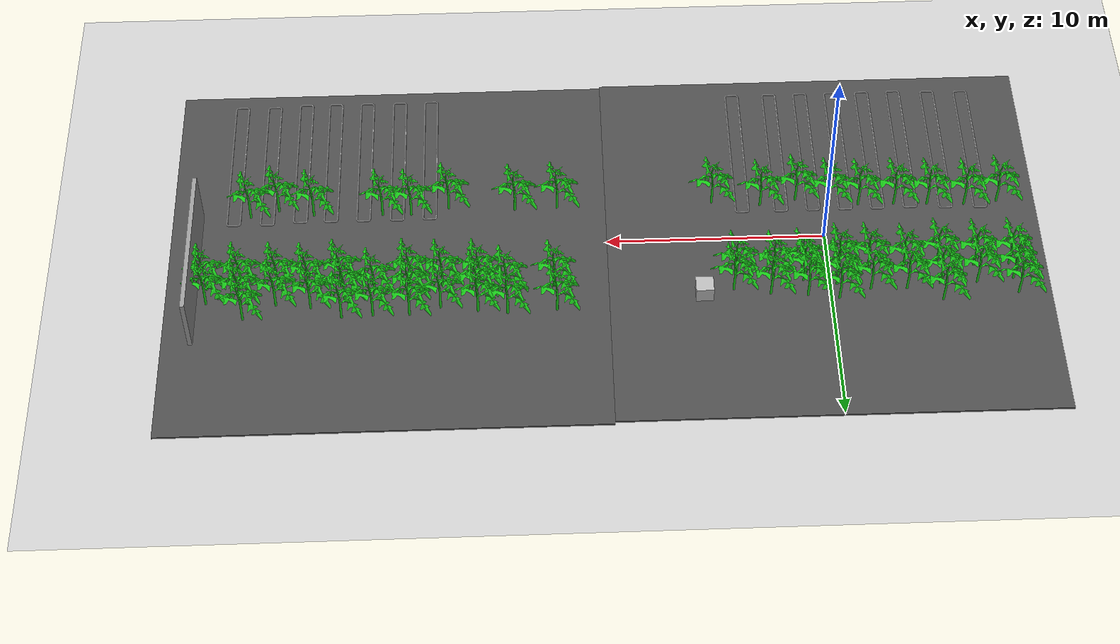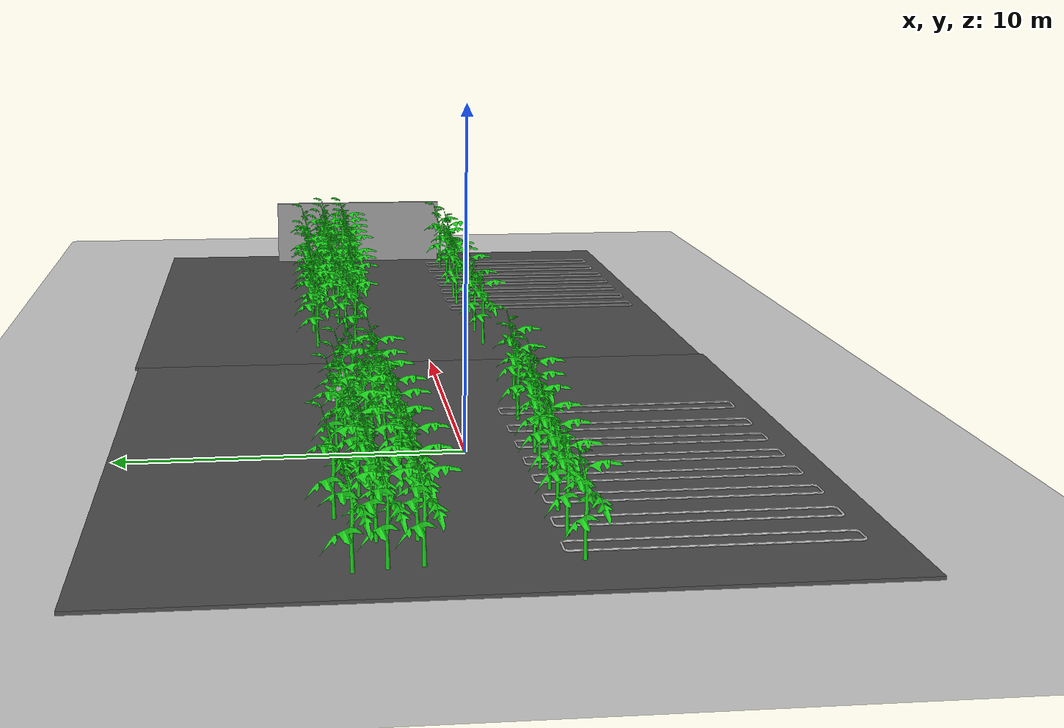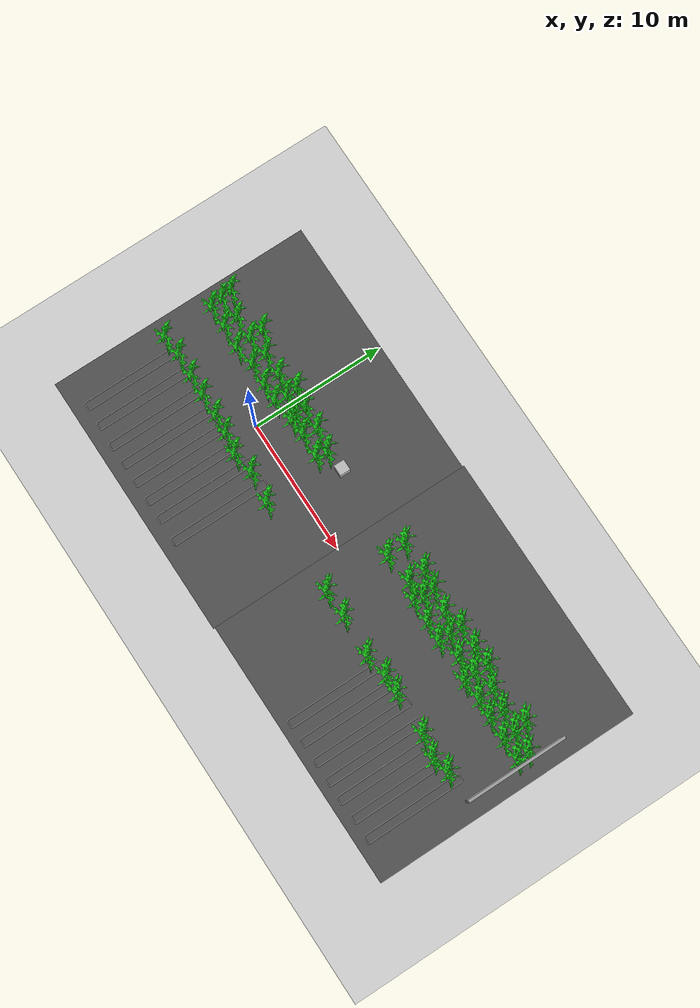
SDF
<sdf version="1.7">
 <world name="default">
  <model name="ground_plane">
   <static>1</static>
   <link name="link">
    <collision name="collision">
     <geometry><plane><normal>0 0 1</normal><size>100 100</size></plane></geometry>
     <surface><friction><ode><mu>100</mu><mu2>50</mu2></ode></friction></surface>
    </collision>
    <visual name="visual">
     <cast_shadows>0</cast_shadows>
     <geometry><plane><normal>0 0 1</normal><size>100 100</size></plane></geometry>
     <material>
      <script><uri>file://media/materials/scripts/gazebo.material</uri><name>Gazebo/Grey</name></script>
     </material>
    </visual>
   </link>
  </model>
  <model name="piperail">
   <static>1</static>
   <link name="link">
    <collision name="collision">
     <geometry>
      <mesh><scale>0.001 0.001 0.001</scale><uri>model://piperail/meshes/piperail.STL</uri></mesh>
     </geometry>
    </collision>
    <visual name="visual">
     <geometry>
      <mesh><scale>0.001 0.001 0.001</scale><uri>model://piperail/meshes/piperail.STL</uri></mesh>
     </geometry>
    </visual>
   </link>
   <pose>0 -1.5 0.05 1.57 -0 0</pose>
  </model>
  <model name="plant">
   <static>1</static>
   <link name="link">
    <visual name="visual">
     <geometry><mesh><scale>0.01 0.01 0.01</scale><uri>model://plant/meshes/plant.STL</uri></mesh></geometry>
     <material>
      <ambient>0.1 0.8 0.1 1</ambient>
      <diffuse>0.1 0.8 0.1 1</diffuse>
      <specular>0.01 0.01 0.01 1</specular>
      <emissive>0 0 0 1</emissive>
     </material>
    </visual>
   </link>
   <pose>1.77763 -1.13342 -0.001164 1.57 -0 0</pose>
  </model>
  <model name="plant_clone_1">
   <static>1</static>
   <link name="link">
    <visual name="visual">
     <geometry><mesh><scale>0.01 0.01 0.01</scale><uri>model://plant/meshes/plant.STL</uri></mesh></geometry>
     <material>
      <ambient>0.1 0.8 0.1 1</ambient>
      <diffuse>0.1 0.8 0.1 1</diffuse>
      <specular>0.01 0.01 0.01 1</specular>
      <emissive>0 0 0 1</emissive>
     </material>
    </visual>
   </link>
   <pose>1.49228 3.17394 0.000845 1.57 -0 0</pose>
  </model>
  <model name="plant_clone_2">
   <static>1</static>
   <link name="link">
    <visual name="visual">
     <geometry><mesh><scale>0.01 0.01 0.01</scale><uri>model://plant/meshes/plant.STL</uri></mesh></geometry>
     <material>
      <ambient>0.1 0.8 0.1 1</ambient>
      <diffuse>0.1 0.8 0.1 1</diffuse>
      <specular>0.01 0.01 0.01 1</specular>
      <emissive>0 0 0 1</emissive>
     </material>
    </visual>
   </link>
   <pose>1.68663 4.1733 0.001925 1.57 -0 0</pose>
  </model>
  <model name="piperail_clone_0">
   <static>1</static>
   <link name="link">
    <collision name="collision">
     <geometry>
      <mesh><scale>0.001 0.001 0.001</scale><uri>model://piperail/meshes/piperail.STL</uri></mesh>
     </geometry>
    </collision>
    <visual name="visual">
     <geometry>
      <mesh><scale>0.001 0.001 0.001</scale><uri>model://piperail/meshes/piperail.STL</uri></mesh>
     </geometry>
    </visual>
   </link>
   <pose>1.5 -1.5 0.05 1.57 -0 0</pose>
  </model>
  <model name="piperail_clone_1">
   <static>1</static>
   <link name="link">
    <collision name="collision">
     <geometry>
      <mesh><scale>0.001 0.001 0.001</scale><uri>model://piperail/meshes/piperail.STL</uri></mesh>
     </geometry>
    </collision>
    <visual name="visual">
     <geometry>
      <mesh><scale>0.001 0.001 0.001</scale><uri>model://piperail/meshes/piperail.STL</uri></mesh>
     </geometry>
    </visual>
   </link>
   <pose>3.3 -1.5 0.05 1.57 -0 0</pose>
  </model>
  <model name="piperail_clone_2">
   <static>1</static>
   <link name="link">
    <collision name="collision">
     <geometry>
      <mesh><scale>0.001 0.001 0.001</scale><uri>model://piperail/meshes/piperail.STL</uri></mesh>
     </geometry>
    </collision>
    <visual name="visual">
     <geometry>
      <mesh><scale>0.001 0.001 0.001</scale><uri>model://piperail/meshes/piperail.STL</uri></mesh>
     </geometry>
    </visual>
   </link>
   <pose>-1.5 -1.5 0.05 1.57 -0 0</pose>
  </model>
  <model name="piperail_clone_3">
   <static>1</static>
   <link name="link">
    <collision name="collision">
     <geometry>
      <mesh><scale>0.001 0.001 0.001</scale><uri>model://piperail/meshes/piperail.STL</uri></mesh>
     </geometry>
    </collision>
    <visual name="visual">
     <geometry>
      <mesh><scale>0.001 0.001 0.001</scale><uri>model://piperail/meshes/piperail.STL</uri></mesh>
     </geometry>
    </visual>
   </link>
   <pose>-3 -1.5 0.05 1.57 -0 0</pose>
  </model>
  <model name="plant_clone_1_clone">
   <static>1</static>
   <link name="link">
    <visual name="visual">
     <geometry><mesh><scale>0.01 0.01 0.01</scale><uri>model://plant/meshes/plant.STL</uri></mesh></geometry>
     <material>
      <ambient>0.1 0.8 0.1 1</ambient>
      <diffuse>0.1 0.8 0.1 1</diffuse>
      <specular>0.01 0.01 0.01 1</specular>
      <emissive>0 0 0 1</emissive>
     </material>
    </visual>
   </link>
   <pose>0.017412 4.30864 0.000845 1.57 -0 0</pose>
  </model>
  <model name="plant_clone_1_clone_0">
   <static>1</static>
   <link name="link">
    <visual name="visual">
     <geometry><mesh><scale>0.01 0.01 0.01</scale><uri>model://plant/meshes/plant.STL</uri></mesh></geometry>
     <material>
      <ambient>0.1 0.8 0.1 1</ambient>
      <diffuse>0.1 0.8 0.1 1</diffuse>
      <specular>0.01 0.01 0.01 1</specular>
      <emissive>0 0 0 1</emissive>
     </material>
    </visual>
   </link>
   <pose>0.140209 3.43982 0.000845 1.57 -0 0</pose>
  </model>
  <model name="plant_clone_1_clone_1">
   <static>1</static>
   <link name="link">
    <visual name="visual">
     <geometry><mesh><scale>0.01 0.01 0.01</scale><uri>model://plant/meshes/plant.STL</uri></mesh></geometry>
     <material>
      <ambient>0.1 0.8 0.1 1</ambient>
      <diffuse>0.1 0.8 0.1 1</diffuse>
      <specular>0.01 0.01 0.01 1</specular>
      <emissive>0 0 0 1</emissive>
     </material>
    </visual>
   </link>
   <pose>0.218511 3.06385 0.000845 1.57 -0 0</pose>
  </model>
  <model name="plant_clone_1_clone_2">
   <static>1</static>
   <link name="link">
    <visual name="visual">
     <geometry><mesh><scale>0.01 0.01 0.01</scale><uri>model://plant/meshes/plant.STL</uri></mesh></geometry>
     <material>
      <ambient>0.1 0.8 0.1 1</ambient>
      <diffuse>0.1 0.8 0.1 1</diffuse>
      <specular>0.01 0.01 0.01 1</specular>
      <emissive>0 0 0 1</emissive>
     </material>
    </visual>
   </link>
   <pose>-1.38801 4.52892 0.000845 1.57 -0 0</pose>
  </model>
  <model name="plant_clone_1_clone_3">
   <static>1</static>
   <link name="link">
    <visual name="visual">
     <geometry><mesh><scale>0.01 0.01 0.01</scale><uri>model://plant/meshes/plant.STL</uri></mesh></geometry>
     <material>
      <ambient>0.1 0.8 0.1 1</ambient>
      <diffuse>0.1 0.8 0.1 1</diffuse>
      <specular>0.01 0.01 0.01 1</specular>
      <emissive>0 0 0 1</emissive>
     </material>
    </visual>
   </link>
   <pose>-1.34584 3.71141 0.000845 1.57 -0 0</pose>
  </model>
  <model name="plant_clone_1_clone_4">
   <static>1</static>
   <link name="link">
    <visual name="visual">
     <geometry><mesh><scale>0.01 0.01 0.01</scale><uri>model://plant/meshes/plant.STL</uri></mesh></geometry>
     <material>
      <ambient>0.1 0.8 0.1 1</ambient>
      <diffuse>0.1 0.8 0.1 1</diffuse>
      <specular>0.01 0.01 0.01 1</specular>
      <emissive>0 0 0 1</emissive>
     </material>
    </visual>
   </link>
   <pose>-1.48013 2.86029 0.000845 1.57 -0 0</pose>
  </model>
  <model name="plant_clone_1_clone_6">
   <static>1</static>
   <link name="link">
    <visual name="visual">
     <geometry><mesh><scale>0.01 0.01 0.01</scale><uri>model://plant/meshes/plant.STL</uri></mesh></geometry>
     <material>
      <ambient>0.1 0.8 0.1 1</ambient>
      <diffuse>0.1 0.8 0.1 1</diffuse>
      <specular>0.01 0.01 0.01 1</specular>
      <emissive>0 0 0 1</emissive>
     </material>
    </visual>
   </link>
   <pose>-2.84798 4.0609 0.000845 1.57 -0 0</pose>
  </model>
  <model name="plant_clone_1_clone_7">
   <static>1</static>
   <link name="link">
    <visual name="visual">
     <geometry><mesh><scale>0.01 0.01 0.01</scale><uri>model://plant/meshes/plant.STL</uri></mesh></geometry>
     <material>
      <ambient>0.1 0.8 0.1 1</ambient>
      <diffuse>0.1 0.8 0.1 1</diffuse>
      <specular>0.01 0.01 0.01 1</specular>
      <emissive>0 0 0 1</emissive>
     </material>
    </visual>
   </link>
   <pose>-2.81594 2.86917 0.000845 1.57 -0 0</pose>
  </model>
  <model name="plant_clone_1_clone_9">
   <static>1</static>
   <link name="link">
    <visual name="visual">
     <geometry><mesh><scale>0.01 0.01 0.01</scale><uri>model://plant/meshes/plant.STL</uri></mesh></geometry>
     <material>
      <ambient>0.1 0.8 0.1 1</ambient>
      <diffuse>0.1 0.8 0.1 1</diffuse>
      <specular>0.01 0.01 0.01 1</specular>
      <emissive>0 0 0 1</emissive>
     </material>
    </visual>
   </link>
   <pose>0.112161 -1.39635 0.000845 1.57 -0 0</pose>
  </model>
  <model name="plant_clone_1_clone_12">
   <static>1</static>
   <link name="link">
    <visual name="visual">
     <geometry><mesh><scale>0.01 0.01 0.01</scale><uri>model://plant/meshes/plant.STL</uri></mesh></geometry>
     <material>
      <ambient>0.1 0.8 0.1 1</ambient>
      <diffuse>0.1 0.8 0.1 1</diffuse>
      <specular>0.01 0.01 0.01 1</specular>
      <emissive>0 0 0 1</emissive>
     </material>
    </visual>
   </link>
   <pose>-1.38485 -1.1272 0.000845 1.57 -0 0</pose>
  </model>
  <model name="plant_clone_1_clone_15">
   <static>1</static>
   <link name="link">
    <visual name="visual">
     <geometry><mesh><scale>0.01 0.01 0.01</scale><uri>model://plant/meshes/plant.STL</uri></mesh></geometry>
     <material>
      <ambient>0.1 0.8 0.1 1</ambient>
      <diffuse>0.1 0.8 0.1 1</diffuse>
      <specular>0.01 0.01 0.01 1</specular>
      <emissive>0 0 0 1</emissive>
     </material>
    </visual>
   </link>
   <pose>-2.79115 -1.01945 0.000845 1.57 -0 0</pose>
  </model>
  <model name="plant_clone_1_clone_22">
   <static>1</static>
   <link name="link">
    <visual name="visual">
     <geometry><mesh><scale>0.01 0.01 0.01</scale><uri>model://plant/meshes/plant.STL</uri></mesh></geometry>
     <material>
      <ambient>0.1 0.8 0.1 1</ambient>
      <diffuse>0.1 0.8 0.1 1</diffuse>
      <specular>0.01 0.01 0.01 1</specular>
      <emissive>0 0 0 1</emissive>
     </material>
    </visual>
   </link>
   <pose>3.34479 3.86027 0.000845 1.57 -0 0</pose>
  </model>
  <model name="plant_clone_1_clone_23">
   <static>1</static>
   <link name="link">
    <visual name="visual">
     <geometry><mesh><scale>0.01 0.01 0.01</scale><uri>model://plant/meshes/plant.STL</uri></mesh></geometry>
     <material>
      <ambient>0.1 0.8 0.1 1</ambient>
      <diffuse>0.1 0.8 0.1 1</diffuse>
      <specular>0.01 0.01 0.01 1</specular>
      <emissive>0 0 0 1</emissive>
     </material>
    </visual>
   </link>
   <pose>3.18776 3.098 0.000845 1.57 -0 0</pose>
  </model>
  <model name="number4">
   <pose>5.71 3.24 0.4 0 -0 0</pose>
   <static>1</static>
   <link name="link">
    <visual name="visual">
     <geometry><mesh><uri>model://number1/meshes/number.dae</uri></mesh></geometry>
     <material>
      <script>
       <uri>model://number4/materials/scripts</uri>
       <uri>model://number4/materials/textures</uri>
       <name>Number/Four</name>
      </script>
     </material>
    </visual>
   </link>
  </model>
  <model name="asphalt_plane">
   <static>1</static>
   <link name="link">
    <collision name="collision"><geometry><box><size>20 20 0.1</size></box></geometry></collision>
    <visual name="visual">
     <cast_shadows>0</cast_shadows>
     <geometry><box><size>20 20 0.1</size></box></geometry>
     <material>
      <script>
       <uri>model://asphalt_plane/materials/scripts</uri>
       <uri>model://asphalt_plane/materials/textures</uri>
       <name>vrc/asphalt</name>
      </script>
     </material>
    </visual>
   </link>
   <pose>0.007662 0.157905 0 0 -0 0</pose>
  </model>
  <model name="asphalt_plane_clone_clone">
   <static>1</static>
   <link name="link">
    <collision name="collision"><geometry><box><size>20 20 0.1</size></box></geometry></collision>
    <visual name="visual">
     <cast_shadows>0</cast_shadows>
     <geometry><box><size>20 20 0.1</size></box></geometry>
     <material>
      <script>
       <uri>model://asphalt_plane/materials/scripts</uri>
       <uri>model://asphalt_plane/materials/textures</uri>
       <name>vrc/asphalt</name>
      </script>
     </material>
    </visual>
   </link>
   <pose>20.0012 0.279422 0 0 -0 0</pose>
  </model>
  <model name="plant_clone_0_clone_30_clone">
   <static>1</static>
   <link name="link">
    <visual name="visual">
     <geometry><mesh><scale>0.01 0.01 0.01</scale><uri>model://plant/meshes/plant.STL</uri></mesh></geometry>
     <material>
      <ambient>0.1 0.8 0.1 1</ambient>
      <diffuse>0.1 0.8 0.1 1</diffuse>
      <specular>0.01 0.01 0.01 1</specular>
      <emissive>0 0 0 1</emissive>
     </material>
    </visual>
   </link>
   <pose>-4.41575 2.97861 0.004669 1.57 -0 0</pose>
  </model>
  <model name="plant_clone_0_clone_30_clone_0">
   <static>1</static>
   <link name="link">
    <visual name="visual">
     <geometry><mesh><scale>0.01 0.01 0.01</scale><uri>model://plant/meshes/plant.STL</uri></mesh></geometry>
     <material>
      <ambient>0.1 0.8 0.1 1</ambient>
      <diffuse>0.1 0.8 0.1 1</diffuse>
      <specular>0.01 0.01 0.01 1</specular>
      <emissive>0 0 0 1</emissive>
     </material>
    </visual>
   </link>
   <pose>-4.49021 4.08176 0.004669 1.57 -0 0</pose>
  </model>
  <model name="plant_clone_0_clone_30_clone_7">
   <static>1</static>
   <link name="link">
    <visual name="visual">
     <geometry><mesh><scale>0.01 0.01 0.01</scale><uri>model://plant/meshes/plant.STL</uri></mesh></geometry>
     <material>
      <ambient>0.1 0.8 0.1 1</ambient>
      <diffuse>0.1 0.8 0.1 1</diffuse>
      <specular>0.01 0.01 0.01 1</specular>
      <emissive>0 0 0 1</emissive>
     </material>
    </visual>
   </link>
   <pose>-5.97367 2.71788 0.004669 1.57 -0 0</pose>
  </model>
  <model name="plant_clone_0_clone_30_clone_8">
   <static>1</static>
   <link name="link">
    <visual name="visual">
     <geometry><mesh><scale>0.01 0.01 0.01</scale><uri>model://plant/meshes/plant.STL</uri></mesh></geometry>
     <material>
      <ambient>0.1 0.8 0.1 1</ambient>
      <diffuse>0.1 0.8 0.1 1</diffuse>
      <specular>0.01 0.01 0.01 1</specular>
      <emissive>0 0 0 1</emissive>
     </material>
    </visual>
   </link>
   <pose>-6.02364 3.83104 0.004669 1.57 -0 0</pose>
  </model>
  <model name="plant_clone_0_clone_30_clone_9">
   <static>1</static>
   <link name="link">
    <visual name="visual">
     <geometry><mesh><scale>0.01 0.01 0.01</scale><uri>model://plant/meshes/plant.STL</uri></mesh></geometry>
     <material>
      <ambient>0.1 0.8 0.1 1</ambient>
      <diffuse>0.1 0.8 0.1 1</diffuse>
      <specular>0.01 0.01 0.01 1</specular>
      <emissive>0 0 0 1</emissive>
     </material>
    </visual>
   </link>
   <pose>-6.0537 4.79406 0.004669 1.57 -0 0</pose>
  </model>
  <model name="plant_clone_0_clone_30_clone_13_clone">
   <static>1</static>
   <link name="link">
    <visual name="visual">
     <geometry><mesh><scale>0.01 0.01 0.01</scale><uri>model://plant/meshes/plant.STL</uri></mesh></geometry>
     <material>
      <ambient>0.1 0.8 0.1 1</ambient>
      <diffuse>0.1 0.8 0.1 1</diffuse>
      <specular>0.01 0.01 0.01 1</specular>
      <emissive>0 0 0 1</emissive>
     </material>
    </visual>
   </link>
   <pose>-7.68288 2.82432 0.004669 1.57 -0 0</pose>
  </model>
  <model name="plant_clone_0_clone_30_clone_13_clone_0">
   <static>1</static>
   <link name="link">
    <visual name="visual">
     <geometry><mesh><scale>0.01 0.01 0.01</scale><uri>model://plant/meshes/plant.STL</uri></mesh></geometry>
     <material>
      <ambient>0.1 0.8 0.1 1</ambient>
      <diffuse>0.1 0.8 0.1 1</diffuse>
      <specular>0.01 0.01 0.01 1</specular>
      <emissive>0 0 0 1</emissive>
     </material>
    </visual>
   </link>
   <pose>-7.70343 3.83309 0.004669 1.57 -0 0</pose>
  </model>
  <model name="plant_clone_0_clone_30_clone_13_clone_5_clone">
   <static>1</static>
   <link name="link">
    <visual name="visual">
     <geometry><mesh><scale>0.01 0.01 0.01</scale><uri>model://plant/meshes/plant.STL</uri></mesh></geometry>
     <material>
      <ambient>0.1 0.8 0.1 1</ambient>
      <diffuse>0.1 0.8 0.1 1</diffuse>
      <specular>0.01 0.01 0.01 1</specular>
      <emissive>0 0 0 1</emissive>
     </material>
    </visual>
   </link>
   <pose>-9.28975 2.81037 0.004669 1.57 -0 0</pose>
  </model>
  <model name="plant_clone_0_clone_30_clone_13_clone_5_clone_0">
   <static>1</static>
   <link name="link">
    <visual name="visual">
     <geometry><mesh><scale>0.01 0.01 0.01</scale><uri>model://plant/meshes/plant.STL</uri></mesh></geometry>
     <material>
      <ambient>0.1 0.8 0.1 1</ambient>
      <diffuse>0.1 0.8 0.1 1</diffuse>
      <specular>0.01 0.01 0.01 1</specular>
      <emissive>0 0 0 1</emissive>
     </material>
    </visual>
   </link>
   <pose>-9.37335 3.66973 0.004669 1.57 -0 0</pose>
  </model>
  <model name="plant_clone_0_clone_30_clone_13_clone_5_clone_1">
   <static>1</static>
   <link name="link">
    <visual name="visual">
     <geometry><mesh><scale>0.01 0.01 0.01</scale><uri>model://plant/meshes/plant.STL</uri></mesh></geometry>
     <material>
      <ambient>0.1 0.8 0.1 1</ambient>
      <diffuse>0.1 0.8 0.1 1</diffuse>
      <specular>0.01 0.01 0.01 1</specular>
      <emissive>0 0 0 1</emissive>
     </material>
    </visual>
   </link>
   <pose>-9.51435 4.49628 0.004669 1.57 -0 0</pose>
  </model>
  <model name="plant_clone_0_clone_30_clone_13_clone_5_clone_19">
   <static>1</static>
   <link name="link">
    <visual name="visual">
     <geometry><mesh><scale>0.01 0.01 0.01</scale><uri>model://plant/meshes/plant.STL</uri></mesh></geometry>
     <material>
      <ambient>0.1 0.8 0.1 1</ambient>
      <diffuse>0.1 0.8 0.1 1</diffuse>
      <specular>0.01 0.01 0.01 1</specular>
      <emissive>0 0 0 1</emissive>
     </material>
    </visual>
   </link>
   <pose>4.02407 -1.37171 0.004669 1.57 -0 0</pose>
  </model>
  <model name="plant_clone_0_clone_30_clone_13_clone_5_clone_24">
   <static>1</static>
   <link name="link">
    <visual name="visual">
     <geometry><mesh><scale>0.01 0.01 0.01</scale><uri>model://plant/meshes/plant.STL</uri></mesh></geometry>
     <material>
      <ambient>0.1 0.8 0.1 1</ambient>
      <diffuse>0.1 0.8 0.1 1</diffuse>
      <specular>0.01 0.01 0.01 1</specular>
      <emissive>0 0 0 1</emissive>
     </material>
    </visual>
   </link>
   <pose>-4.45394 -0.993332 0.004669 1.57 -0 0</pose>
  </model>
  <model name="piperail_clone_3_clone">
   <static>1</static>
   <link name="link">
    <collision name="collision">
     <geometry>
      <mesh><scale>0.001 0.001 0.001</scale><uri>model://piperail/meshes/piperail.STL</uri></mesh>
     </geometry>
    </collision>
    <visual name="visual">
     <geometry>
      <mesh><scale>0.001 0.001 0.001</scale><uri>model://piperail/meshes/piperail.STL</uri></mesh>
     </geometry>
    </visual>
   </link>
   <pose>-4.52656 -1.51826 0.05 1.57 -0 0</pose>
  </model>
  <model name="plant_clone_0_clone_30_clone_13_clone_5_clone_30_clone">
   <static>1</static>
   <link name="link">
    <visual name="visual">
     <geometry><mesh><scale>0.01 0.01 0.01</scale><uri>model://plant/meshes/plant.STL</uri></mesh></geometry>
     <material>
      <ambient>0.1 0.8 0.1 1</ambient>
      <diffuse>0.1 0.8 0.1 1</diffuse>
      <specular>0.01 0.01 0.01 1</specular>
      <emissive>0 0 0 1</emissive>
     </material>
    </visual>
   </link>
   <pose>-6.00105 -0.928736 0.004669 1.57 -0 0</pose>
  </model>
  <model name="piperail_clone_3_clone_clone">
   <static>1</static>
   <link name="link">
    <collision name="collision">
     <geometry>
      <mesh><scale>0.001 0.001 0.001</scale><uri>model://piperail/meshes/piperail.STL</uri></mesh>
     </geometry>
    </collision>
    <visual name="visual">
     <geometry>
      <mesh><scale>0.001 0.001 0.001</scale><uri>model://piperail/meshes/piperail.STL</uri></mesh>
     </geometry>
    </visual>
   </link>
   <pose>-6.17433 -1.44646 0.05 1.57 -0 0</pose>
  </model>
  <model name="plant_clone_0_clone_30_clone_13_clone_5_clone_30_clone_5_clone">
   <static>1</static>
   <link name="link">
    <visual name="visual">
     <geometry><mesh><scale>0.01 0.01 0.01</scale><uri>model://plant/meshes/plant.STL</uri></mesh></geometry>
     <material>
      <ambient>0.1 0.8 0.1 1</ambient>
      <diffuse>0.1 0.8 0.1 1</diffuse>
      <specular>0.01 0.01 0.01 1</specular>
      <emissive>0 0 0 1</emissive>
     </material>
    </visual>
   </link>
   <pose>-7.71155 -0.846546 0.004669 1.57 -0 0</pose>
  </model>
  <model name="piperail_clone_3_clone_clone_clone">
   <static>1</static>
   <link name="link">
    <collision name="collision">
     <geometry>
      <mesh><scale>0.001 0.001 0.001</scale><uri>model://piperail/meshes/piperail.STL</uri></mesh>
     </geometry>
    </collision>
    <visual name="visual">
     <geometry>
      <mesh><scale>0.001 0.001 0.001</scale><uri>model://piperail/meshes/piperail.STL</uri></mesh>
     </geometry>
    </visual>
   </link>
   <pose>-7.78555 -1.40102 0.05 1.57 -0 0</pose>
  </model>
  <model name="plant_clone_0_clone_30_clone_13_clone_5_clone_30_clone_5_clone_clone">
   <static>1</static>
   <link name="link">
    <visual name="visual">
     <geometry><mesh><scale>0.01 0.01 0.01</scale><uri>model://plant/meshes/plant.STL</uri></mesh></geometry>
     <material>
      <ambient>0.1 0.8 0.1 1</ambient>
      <diffuse>0.1 0.8 0.1 1</diffuse>
      <specular>0.01 0.01 0.01 1</specular>
      <emissive>0 0 0 1</emissive>
     </material>
    </visual>
   </link>
   <pose>-9.24657 -0.985367 0.004669 1.57 -0 0</pose>
  </model>
  <model name="grey_wall_clone_clone_1_clone_1">
   <static>1</static>
   <link name="link">
    <pose>0 0 1.4 0 -0 0</pose>
    <collision name="collision"><geometry><box><size>7.5 0.2 2.8</size></box></geometry></collision>
    <visual name="visual">
     <cast_shadows>0</cast_shadows>
     <geometry><box><size>7.5 0.2 2.8</size></box></geometry>
     <material>
      <script>
       <uri>model://grey_wall/materials/scripts</uri>
       <uri>model://grey_wall/materials/textures</uri>
       <name>vrc/grey_wall</name>
      </script>
     </material>
    </visual>
   </link>
   <pose>28.6886 1.56137 0 0 -0 1.57</pose>
  </model>
  <model name="piperail_clone_7_clone_1">
   <static>1</static>
   <link name="link">
    <collision name="collision">
     <geometry>
      <mesh><scale>0.001 0.001 0.001</scale><uri>model://piperail/meshes/piperail.STL</uri></mesh>
     </geometry>
    </collision>
    <visual name="visual">
     <geometry>
      <mesh><scale>0.001 0.001 0.001</scale><uri>model://piperail/meshes/piperail.STL</uri></mesh>
     </geometry>
    </visual>
   </link>
   <pose>17.7998 -1.60912 0.050344 1.57 -0 0</pose>
  </model>
  <model name="piperail_clone_7_clone_2">
   <static>1</static>
   <link name="link">
    <collision name="collision">
     <geometry>
      <mesh><scale>0.001 0.001 0.001</scale><uri>model://piperail/meshes/piperail.STL</uri></mesh>
     </geometry>
    </collision>
    <visual name="visual">
     <geometry>
      <mesh><scale>0.001 0.001 0.001</scale><uri>model://piperail/meshes/piperail.STL</uri></mesh>
     </geometry>
    </visual>
   </link>
   <pose>19.303 -1.58869 0.050345 1.57 -0 0</pose>
  </model>
  <model name="piperail_clone_7_clone_3">
   <static>1</static>
   <link name="link">
    <collision name="collision">
     <geometry>
      <mesh><scale>0.001 0.001 0.001</scale><uri>model://piperail/meshes/piperail.STL</uri></mesh>
     </geometry>
    </collision>
    <visual name="visual">
     <geometry>
      <mesh><scale>0.001 0.001 0.001</scale><uri>model://piperail/meshes/piperail.STL</uri></mesh>
     </geometry>
    </visual>
   </link>
   <pose>20.8613 -1.59672 0.050298 1.57 -0 0</pose>
  </model>
  <model name="piperail_clone_7_clone_4">
   <static>1</static>
   <link name="link">
    <collision name="collision">
     <geometry>
      <mesh><scale>0.001 0.001 0.001</scale><uri>model://piperail/meshes/piperail.STL</uri></mesh>
     </geometry>
    </collision>
    <visual name="visual">
     <geometry>
      <mesh><scale>0.001 0.001 0.001</scale><uri>model://piperail/meshes/piperail.STL</uri></mesh>
     </geometry>
    </visual>
   </link>
   <pose>22.3656 -1.61125 0.050356 1.57 -0 0</pose>
  </model>
  <model name="piperail_clone_7_clone_5">
   <static>1</static>
   <link name="link">
    <collision name="collision">
     <geometry>
      <mesh><scale>0.001 0.001 0.001</scale><uri>model://piperail/meshes/piperail.STL</uri></mesh>
     </geometry>
    </collision>
    <visual name="visual">
     <geometry>
      <mesh><scale>0.001 0.001 0.001</scale><uri>model://piperail/meshes/piperail.STL</uri></mesh>
     </geometry>
    </visual>
   </link>
   <pose>23.7839 -1.61637 0.050334 1.57 -0 0</pose>
  </model>
  <model name="piperail_clone_7_clone_6">
   <static>1</static>
   <link name="link">
    <collision name="collision">
     <geometry>
      <mesh><scale>0.001 0.001 0.001</scale><uri>model://piperail/meshes/piperail.STL</uri></mesh>
     </geometry>
    </collision>
    <visual name="visual">
     <geometry>
      <mesh><scale>0.001 0.001 0.001</scale><uri>model://piperail/meshes/piperail.STL</uri></mesh>
     </geometry>
    </visual>
   </link>
   <pose>25.3032 -1.51435 0.050271 1.57 -0 0</pose>
  </model>
  <model name="piperail_clone_7_clone_7">
   <static>1</static>
   <link name="link">
    <collision name="collision">
     <geometry>
      <mesh><scale>0.001 0.001 0.001</scale><uri>model://piperail/meshes/piperail.STL</uri></mesh>
     </geometry>
    </collision>
    <visual name="visual">
     <geometry>
      <mesh><scale>0.001 0.001 0.001</scale><uri>model://piperail/meshes/piperail.STL</uri></mesh>
     </geometry>
    </visual>
   </link>
   <pose>26.857 -1.53628 0.05025 1.57 -0 0</pose>
  </model>
  <model name="plant_clone_1_clone_23_clone_clone_11">
   <static>1</static>
   <link name="link">
    <visual name="visual">
     <geometry><mesh><scale>0.01 0.01 0.01</scale><uri>model://plant/meshes/plant.STL</uri></mesh></geometry>
     <material>
      <ambient>0.1 0.8 0.1 1</ambient>
      <diffuse>0.1 0.8 0.1 1</diffuse>
      <specular>0.01 0.01 0.01 1</specular>
      <emissive>0 0 0 1</emissive>
     </material>
    </visual>
   </link>
   <pose>13.1702 -1.27384 0.000845 1.57 -0 0</pose>
  </model>
  <model name="plant_clone_1_clone_23_clone_clone_12">
   <static>1</static>
   <link name="link">
    <visual name="visual">
     <geometry><mesh><scale>0.01 0.01 0.01</scale><uri>model://plant/meshes/plant.STL</uri></mesh></geometry>
     <material>
      <ambient>0.1 0.8 0.1 1</ambient>
      <diffuse>0.1 0.8 0.1 1</diffuse>
      <specular>0.01 0.01 0.01 1</specular>
      <emissive>0 0 0 1</emissive>
     </material>
    </visual>
   </link>
   <pose>16.24 -1.46974 0.000845 1.57 -0 0</pose>
  </model>
  <model name="plant_clone_1_clone_23_clone_clone_26">
   <static>1</static>
   <link name="link">
    <visual name="visual">
     <geometry><mesh><scale>0.01 0.01 0.01</scale><uri>model://plant/meshes/plant.STL</uri></mesh></geometry>
     <material>
      <ambient>0.1 0.8 0.1 1</ambient>
      <diffuse>0.1 0.8 0.1 1</diffuse>
      <specular>0.01 0.01 0.01 1</specular>
      <emissive>0 0 0 1</emissive>
     </material>
    </visual>
   </link>
   <pose>17.9761 -1.15203 0.000845 1.57 -0 0</pose>
  </model>
  <model name="plant_clone_1_clone_23_clone_clone_27">
   <static>1</static>
   <link name="link">
    <visual name="visual">
     <geometry><mesh><scale>0.01 0.01 0.01</scale><uri>model://plant/meshes/plant.STL</uri></mesh></geometry>
     <material>
      <ambient>0.1 0.8 0.1 1</ambient>
      <diffuse>0.1 0.8 0.1 1</diffuse>
      <specular>0.01 0.01 0.01 1</specular>
      <emissive>0 0 0 1</emissive>
     </material>
    </visual>
   </link>
   <pose>19.2993 -1.17583 0.000845 1.57 -0 0</pose>
  </model>
  <model name="plant_clone_1_clone_23_clone_clone_48">
   <static>1</static>
   <link name="link">
    <visual name="visual">
     <geometry><mesh><scale>0.01 0.01 0.01</scale><uri>model://plant/meshes/plant.STL</uri></mesh></geometry>
     <material>
      <ambient>0.1 0.8 0.1 1</ambient>
      <diffuse>0.1 0.8 0.1 1</diffuse>
      <specular>0.01 0.01 0.01 1</specular>
      <emissive>0 0 0 1</emissive>
     </material>
    </visual>
   </link>
   <pose>22.4785 -1.25458 0.000845 1.57 -0 0</pose>
  </model>
  <model name="plant_clone_1_clone_23_clone_clone_57">
   <static>1</static>
   <link name="link">
    <visual name="visual">
     <geometry><mesh><scale>0.01 0.01 0.01</scale><uri>model://plant/meshes/plant.STL</uri></mesh></geometry>
     <material>
      <ambient>0.1 0.8 0.1 1</ambient>
      <diffuse>0.1 0.8 0.1 1</diffuse>
      <specular>0.01 0.01 0.01 1</specular>
      <emissive>0 0 0 1</emissive>
     </material>
    </visual>
   </link>
   <pose>24.102 -1.56768 0.000845 1.57 -0 0</pose>
  </model>
  <model name="plant_clone_1_clone_23_clone_clone_58">
   <static>1</static>
   <link name="link">
    <visual name="visual">
     <geometry><mesh><scale>0.01 0.01 0.01</scale><uri>model://plant/meshes/plant.STL</uri></mesh></geometry>
     <material>
      <ambient>0.1 0.8 0.1 1</ambient>
      <diffuse>0.1 0.8 0.1 1</diffuse>
      <specular>0.01 0.01 0.01 1</specular>
      <emissive>0 0 0 1</emissive>
     </material>
    </visual>
   </link>
   <pose>25.3937 -1.24417 0.000845 1.57 -0 0</pose>
  </model>
  <model name="plant_clone_1_clone_23_clone_clone_11_clone_4">
   <static>1</static>
   <link name="link">
    <visual name="visual">
     <geometry><mesh><scale>0.01 0.01 0.01</scale><uri>model://plant/meshes/plant.STL</uri></mesh></geometry>
     <material>
      <ambient>0.1 0.8 0.1 1</ambient>
      <diffuse>0.1 0.8 0.1 1</diffuse>
      <specular>0.01 0.01 0.01 1</specular>
      <emissive>0 0 0 1</emissive>
     </material>
    </visual>
   </link>
   <pose>13.5655 4.83967 0.000845 1.57 -0 0</pose>
  </model>
  <model name="plant_clone_1_clone_23_clone_clone_11_clone_5">
   <static>1</static>
   <link name="link">
    <visual name="visual">
     <geometry><mesh><scale>0.01 0.01 0.01</scale><uri>model://plant/meshes/plant.STL</uri></mesh></geometry>
     <material>
      <ambient>0.1 0.8 0.1 1</ambient>
      <diffuse>0.1 0.8 0.1 1</diffuse>
      <specular>0.01 0.01 0.01 1</specular>
      <emissive>0 0 0 1</emissive>
     </material>
    </visual>
   </link>
   <pose>13.6204 3.59553 0.000845 1.57 -0 0</pose>
  </model>
  <model name="plant_clone_1_clone_23_clone_clone_11_clone_6">
   <static>1</static>
   <link name="link">
    <visual name="visual">
     <geometry><mesh><scale>0.01 0.01 0.01</scale><uri>model://plant/meshes/plant.STL</uri></mesh></geometry>
     <material>
      <ambient>0.1 0.8 0.1 1</ambient>
      <diffuse>0.1 0.8 0.1 1</diffuse>
      <specular>0.01 0.01 0.01 1</specular>
      <emissive>0 0 0 1</emissive>
     </material>
    </visual>
   </link>
   <pose>14.8394 3.1537 0.000845 1.57 -0 0</pose>
  </model>
  <model name="plant_clone_1_clone_23_clone_clone_11_clone_7">
   <static>1</static>
   <link name="link">
    <visual name="visual">
     <geometry><mesh><scale>0.01 0.01 0.01</scale><uri>model://plant/meshes/plant.STL</uri></mesh></geometry>
     <material>
      <ambient>0.1 0.8 0.1 1</ambient>
      <diffuse>0.1 0.8 0.1 1</diffuse>
      <specular>0.01 0.01 0.01 1</specular>
      <emissive>0 0 0 1</emissive>
     </material>
    </visual>
   </link>
   <pose>14.9483 3.85034 0.000845 1.57 -0 0</pose>
  </model>
  <model name="plant_clone_1_clone_23_clone_clone_11_clone_8">
   <static>1</static>
   <link name="link">
    <visual name="visual">
     <geometry><mesh><scale>0.01 0.01 0.01</scale><uri>model://plant/meshes/plant.STL</uri></mesh></geometry>
     <material>
      <ambient>0.1 0.8 0.1 1</ambient>
      <diffuse>0.1 0.8 0.1 1</diffuse>
      <specular>0.01 0.01 0.01 1</specular>
      <emissive>0 0 0 1</emissive>
     </material>
    </visual>
   </link>
   <pose>14.8936 4.67388 0.000845 1.57 -0 0</pose>
  </model>
  <model name="plant_clone_1_clone_23_clone_clone_11_clone_19">
   <static>1</static>
   <link name="link">
    <visual name="visual">
     <geometry><mesh><scale>0.01 0.01 0.01</scale><uri>model://plant/meshes/plant.STL</uri></mesh></geometry>
     <material>
      <ambient>0.1 0.8 0.1 1</ambient>
      <diffuse>0.1 0.8 0.1 1</diffuse>
      <specular>0.01 0.01 0.01 1</specular>
      <emissive>0 0 0 1</emissive>
     </material>
    </visual>
   </link>
   <pose>16.5742 4.41203 0.000845 1.57 -0 0</pose>
  </model>
  <model name="plant_clone_1_clone_23_clone_clone_11_clone_20">
   <static>1</static>
   <link name="link">
    <visual name="visual">
     <geometry><mesh><scale>0.01 0.01 0.01</scale><uri>model://plant/meshes/plant.STL</uri></mesh></geometry>
     <material>
      <ambient>0.1 0.8 0.1 1</ambient>
      <diffuse>0.1 0.8 0.1 1</diffuse>
      <specular>0.01 0.01 0.01 1</specular>
      <emissive>0 0 0 1</emissive>
     </material>
    </visual>
   </link>
   <pose>16.5005 3.13507 0.000845 1.57 -0 0</pose>
  </model>
  <model name="plant_clone_1_clone_23_clone_clone_11_clone_21">
   <static>1</static>
   <link name="link">
    <visual name="visual">
     <geometry><mesh><scale>0.01 0.01 0.01</scale><uri>model://plant/meshes/plant.STL</uri></mesh></geometry>
     <material>
      <ambient>0.1 0.8 0.1 1</ambient>
      <diffuse>0.1 0.8 0.1 1</diffuse>
      <specular>0.01 0.01 0.01 1</specular>
      <emissive>0 0 0 1</emissive>
     </material>
    </visual>
   </link>
   <pose>17.9599 3.04637 0.000845 1.57 -0 0</pose>
  </model>
  <model name="plant_clone_1_clone_23_clone_clone_11_clone_22">
   <static>1</static>
   <link name="link">
    <visual name="visual">
     <geometry><mesh><scale>0.01 0.01 0.01</scale><uri>model://plant/meshes/plant.STL</uri></mesh></geometry>
     <material>
      <ambient>0.1 0.8 0.1 1</ambient>
      <diffuse>0.1 0.8 0.1 1</diffuse>
      <specular>0.01 0.01 0.01 1</specular>
      <emissive>0 0 0 1</emissive>
     </material>
    </visual>
   </link>
   <pose>17.9767 3.89947 0.000845 1.57 -0 0</pose>
  </model>
  <model name="plant_clone_1_clone_23_clone_clone_11_clone_23">
   <static>1</static>
   <link name="link">
    <visual name="visual">
     <geometry><mesh><scale>0.01 0.01 0.01</scale><uri>model://plant/meshes/plant.STL</uri></mesh></geometry>
     <material>
      <ambient>0.1 0.8 0.1 1</ambient>
      <diffuse>0.1 0.8 0.1 1</diffuse>
      <specular>0.01 0.01 0.01 1</specular>
      <emissive>0 0 0 1</emissive>
     </material>
    </visual>
   </link>
   <pose>17.9668 4.77939 0.000845 1.57 -0 0</pose>
  </model>
  <model name="plant_clone_1_clone_23_clone_clone_11_clone_33">
   <static>1</static>
   <link name="link">
    <visual name="visual">
     <geometry><mesh><scale>0.01 0.01 0.01</scale><uri>model://plant/meshes/plant.STL</uri></mesh></geometry>
     <material>
      <ambient>0.1 0.8 0.1 1</ambient>
      <diffuse>0.1 0.8 0.1 1</diffuse>
      <specular>0.01 0.01 0.01 1</specular>
      <emissive>0 0 0 1</emissive>
     </material>
    </visual>
   </link>
   <pose>19.6047 4.76307 0.000845 1.57 -0 0</pose>
  </model>
  <model name="plant_clone_1_clone_23_clone_clone_11_clone_34">
   <static>1</static>
   <link name="link">
    <visual name="visual">
     <geometry><mesh><scale>0.01 0.01 0.01</scale><uri>model://plant/meshes/plant.STL</uri></mesh></geometry>
     <material>
      <ambient>0.1 0.8 0.1 1</ambient>
      <diffuse>0.1 0.8 0.1 1</diffuse>
      <specular>0.01 0.01 0.01 1</specular>
      <emissive>0 0 0 1</emissive>
     </material>
    </visual>
   </link>
   <pose>19.5544 3.53078 0.000845 1.57 -0 0</pose>
  </model>
  <model name="plant_clone_1_clone_23_clone_clone_11_clone_40">
   <static>1</static>
   <link name="link">
    <visual name="visual">
     <geometry><mesh><scale>0.01 0.01 0.01</scale><uri>model://plant/meshes/plant.STL</uri></mesh></geometry>
     <material>
      <ambient>0.1 0.8 0.1 1</ambient>
      <diffuse>0.1 0.8 0.1 1</diffuse>
      <specular>0.01 0.01 0.01 1</specular>
      <emissive>0 0 0 1</emissive>
     </material>
    </visual>
   </link>
   <pose>21.0075 4.83775 0.000845 1.57 -0 0</pose>
  </model>
  <model name="plant_clone_1_clone_23_clone_clone_11_clone_41">
   <static>1</static>
   <link name="link">
    <visual name="visual">
     <geometry><mesh><scale>0.01 0.01 0.01</scale><uri>model://plant/meshes/plant.STL</uri></mesh></geometry>
     <material>
      <ambient>0.1 0.8 0.1 1</ambient>
      <diffuse>0.1 0.8 0.1 1</diffuse>
      <specular>0.01 0.01 0.01 1</specular>
      <emissive>0 0 0 1</emissive>
     </material>
    </visual>
   </link>
   <pose>20.8851 3.83505 0.000845 1.57 -0 0</pose>
  </model>
  <model name="plant_clone_1_clone_23_clone_clone_11_clone_42">
   <static>1</static>
   <link name="link">
    <visual name="visual">
     <geometry><mesh><scale>0.01 0.01 0.01</scale><uri>model://plant/meshes/plant.STL</uri></mesh></geometry>
     <material>
      <ambient>0.1 0.8 0.1 1</ambient>
      <diffuse>0.1 0.8 0.1 1</diffuse>
      <specular>0.01 0.01 0.01 1</specular>
      <emissive>0 0 0 1</emissive>
     </material>
    </visual>
   </link>
   <pose>21.0737 2.95861 0.000845 1.57 -0 0</pose>
  </model>
  <model name="plant_clone_1_clone_23_clone_clone_11_clone_48">
   <static>1</static>
   <link name="link">
    <visual name="visual">
     <geometry><mesh><scale>0.01 0.01 0.01</scale><uri>model://plant/meshes/plant.STL</uri></mesh></geometry>
     <material>
      <ambient>0.1 0.8 0.1 1</ambient>
      <diffuse>0.1 0.8 0.1 1</diffuse>
      <specular>0.01 0.01 0.01 1</specular>
      <emissive>0 0 0 1</emissive>
     </material>
    </visual>
   </link>
   <pose>22.4059 4.2377 0.000845 1.57 -0 0</pose>
  </model>
  <model name="plant_clone_1_clone_23_clone_clone_11_clone_49">
   <static>1</static>
   <link name="link">
    <visual name="visual">
     <geometry><mesh><scale>0.01 0.01 0.01</scale><uri>model://plant/meshes/plant.STL</uri></mesh></geometry>
     <material>
      <ambient>0.1 0.8 0.1 1</ambient>
      <diffuse>0.1 0.8 0.1 1</diffuse>
      <specular>0.01 0.01 0.01 1</specular>
      <emissive>0 0 0 1</emissive>
     </material>
    </visual>
   </link>
   <pose>22.5309 3.1248 0.000845 1.57 -0 0</pose>
  </model>
  <model name="plant_clone_1_clone_23_clone_clone_11_clone_55">
   <static>1</static>
   <link name="link">
    <visual name="visual">
     <geometry><mesh><scale>0.01 0.01 0.01</scale><uri>model://plant/meshes/plant.STL</uri></mesh></geometry>
     <material>
      <ambient>0.1 0.8 0.1 1</ambient>
      <diffuse>0.1 0.8 0.1 1</diffuse>
      <specular>0.01 0.01 0.01 1</specular>
      <emissive>0 0 0 1</emissive>
     </material>
    </visual>
   </link>
   <pose>23.9772 4.03519 0.000845 1.57 -0 0</pose>
  </model>
  <model name="plant_clone_1_clone_23_clone_clone_11_clone_56">
   <static>1</static>
   <link name="link">
    <visual name="visual">
     <geometry><mesh><scale>0.01 0.01 0.01</scale><uri>model://plant/meshes/plant.STL</uri></mesh></geometry>
     <material>
      <ambient>0.1 0.8 0.1 1</ambient>
      <diffuse>0.1 0.8 0.1 1</diffuse>
      <specular>0.01 0.01 0.01 1</specular>
      <emissive>0 0 0 1</emissive>
     </material>
    </visual>
   </link>
   <pose>23.9179 3.0302 0.000845 1.57 -0 0</pose>
  </model>
  <model name="plant_clone_1_clone_23_clone_clone_11_clone_61">
   <static>1</static>
   <link name="link">
    <visual name="visual">
     <geometry><mesh><scale>0.01 0.01 0.01</scale><uri>model://plant/meshes/plant.STL</uri></mesh></geometry>
     <material>
      <ambient>0.1 0.8 0.1 1</ambient>
      <diffuse>0.1 0.8 0.1 1</diffuse>
      <specular>0.01 0.01 0.01 1</specular>
      <emissive>0 0 0 1</emissive>
     </material>
    </visual>
   </link>
   <pose>25.4254 4.78985 0.000845 1.57 -0 0</pose>
  </model>
  <model name="plant_clone_1_clone_23_clone_clone_11_clone_62">
   <static>1</static>
   <link name="link">
    <visual name="visual">
     <geometry><mesh><scale>0.01 0.01 0.01</scale><uri>model://plant/meshes/plant.STL</uri></mesh></geometry>
     <material>
      <ambient>0.1 0.8 0.1 1</ambient>
      <diffuse>0.1 0.8 0.1 1</diffuse>
      <specular>0.01 0.01 0.01 1</specular>
      <emissive>0 0 0 1</emissive>
     </material>
    </visual>
   </link>
   <pose>25.5633 3.89955 0.000845 1.57 -0 0</pose>
  </model>
  <model name="plant_clone_1_clone_23_clone_clone_11_clone_63">
   <static>1</static>
   <link name="link">
    <visual name="visual">
     <geometry><mesh><scale>0.01 0.01 0.01</scale><uri>model://plant/meshes/plant.STL</uri></mesh></geometry>
     <material>
      <ambient>0.1 0.8 0.1 1</ambient>
      <diffuse>0.1 0.8 0.1 1</diffuse>
      <specular>0.01 0.01 0.01 1</specular>
      <emissive>0 0 0 1</emissive>
     </material>
    </visual>
   </link>
   <pose>25.5712 2.98097 0.000845 1.57 -0 0</pose>
  </model>
  <model name="plant_clone_1_clone_23_clone_clone_11_clone_68">
   <static>1</static>
   <link name="link">
    <visual name="visual">
     <geometry><mesh><scale>0.01 0.01 0.01</scale><uri>model://plant/meshes/plant.STL</uri></mesh></geometry>
     <material>
      <ambient>0.1 0.8 0.1 1</ambient>
      <diffuse>0.1 0.8 0.1 1</diffuse>
      <specular>0.01 0.01 0.01 1</specular>
      <emissive>0 0 0 1</emissive>
     </material>
    </visual>
   </link>
   <pose>27.1247 3.82639 0.000845 1.57 -0 0</pose>
  </model>
  <model name="plant_clone_1_clone_23_clone_clone_11_clone_69">
   <static>1</static>
   <link name="link">
    <visual name="visual">
     <geometry><mesh><scale>0.01 0.01 0.01</scale><uri>model://plant/meshes/plant.STL</uri></mesh></geometry>
     <material>
      <ambient>0.1 0.8 0.1 1</ambient>
      <diffuse>0.1 0.8 0.1 1</diffuse>
      <specular>0.01 0.01 0.01 1</specular>
      <emissive>0 0 0 1</emissive>
     </material>
    </visual>
   </link>
   <pose>27.1394 2.99184 0.000845 1.57 -0 0</pose>
  </model>
  <model name="plant_clone_1_clone_23_clone_clone_11_clone_5_clone_2">
   <static>1</static>
   <link name="link">
    <visual name="visual">
     <geometry><mesh><scale>0.01 0.01 0.01</scale><uri>model://plant/meshes/plant.STL</uri></mesh></geometry>
     <material>
      <ambient>0.1 0.8 0.1 1</ambient>
      <diffuse>0.1 0.8 0.1 1</diffuse>
      <specular>0.01 0.01 0.01 1</specular>
      <emissive>0 0 0 1</emissive>
     </material>
    </visual>
   </link>
   <pose>11.3486 4.73115 0.000845 1.57 -0 0</pose>
  </model>
  <model name="plant_clone_1_clone_23_clone_clone_11_clone_5_clone_3">
   <static>1</static>
   <link name="link">
    <visual name="visual">
     <geometry><mesh><scale>0.01 0.01 0.01</scale><uri>model://plant/meshes/plant.STL</uri></mesh></geometry>
     <material>
      <ambient>0.1 0.8 0.1 1</ambient>
      <diffuse>0.1 0.8 0.1 1</diffuse>
      <specular>0.01 0.01 0.01 1</specular>
      <emissive>0 0 0 1</emissive>
     </material>
    </visual>
   </link>
   <pose>11.4338 3.35434 0.000845 1.57 -0 0</pose>
  </model>
  <model name="plant_clone_1_clone_23_clone_clone_11_clone_5_clone_4">
   <static>1</static>
   <link name="link">
    <visual name="visual">
     <geometry><mesh><scale>0.01 0.01 0.01</scale><uri>model://plant/meshes/plant.STL</uri></mesh></geometry>
     <material>
      <ambient>0.1 0.8 0.1 1</ambient>
      <diffuse>0.1 0.8 0.1 1</diffuse>
      <specular>0.01 0.01 0.01 1</specular>
      <emissive>0 0 0 1</emissive>
     </material>
    </visual>
   </link>
   <pose>11.215 -1.33082 0.000845 1.57 -0 0</pose>
  </model>
 </world>
</sdf>
